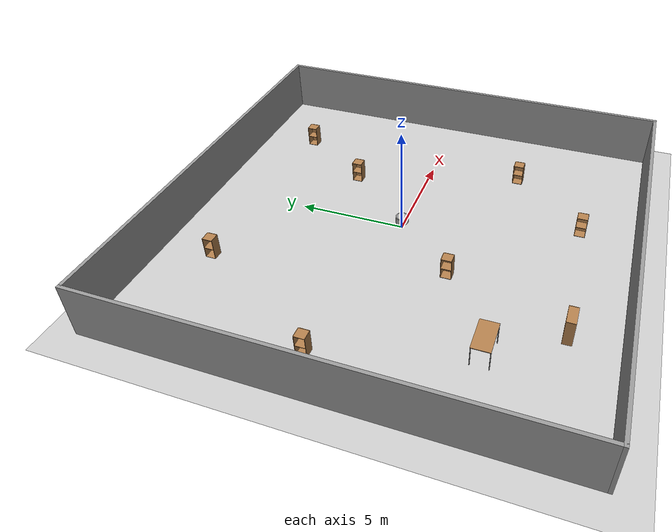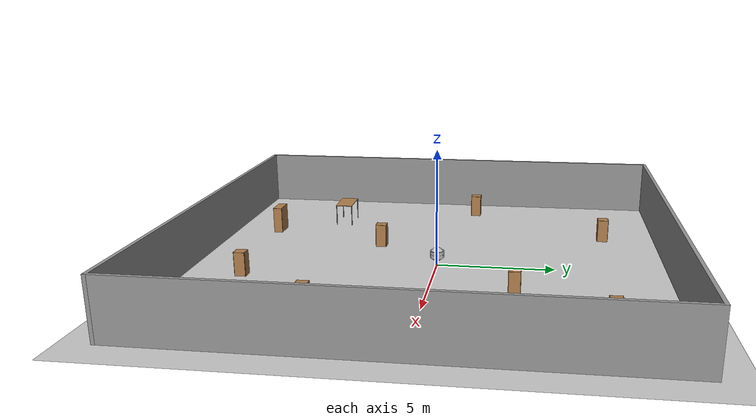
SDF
<sdf version="1.6">
 <world name="default">
  <light name="sun" type="directional">
   <pose>0 0 10 0 -0 0</pose>
   <diffuse>0.8 0.8 0.8 1</diffuse>
   <specular>0.2 0.2 0.2 1</specular>
   <attenuation>
    <range>1000</range>
    <constant>0.9</constant>
    <linear>0.01</linear>
    <quadratic>0.001</quadratic>
   </attenuation>
   <direction>-0.5 0.1 -0.9</direction>
  </light>
  <model name="animated_box">
   <pose>0 0 0.5 0 0 0</pose>
   <link name="link">
    <collision name="animated_box_collision"><geometry><box><size>0.2 0.3 0.3</size></box></geometry></collision>
    <visual name="visual"><geometry><box><size>0.2 0.3 0.3</size></box></geometry></visual>
    <inertial>
     <inertia><ixx>1</ixx><ixy>0</ixy><ixz>0</ixz><iyy>1</iyy><iyz>0</iyz><izz>1</izz></inertia>
     <mass>1</mass>
    </inertial>
    <gravity>0</gravity>
   </link>
   <plugin name="push_animate" filename="libbox_clockwise_movement.so"/>
  </model>
  <model name="animated_ball">
   <pose>0 0 0.5 0 0 0</pose>
   <link name="link">
    <collision name="animated_ball_collision">
     <geometry><sphere><radius>0.3</radius></sphere></geometry>
    </collision>
    <visual name="visual"><geometry><sphere><radius>0.3</radius></sphere></geometry></visual>
    <inertial>
     <inertia><ixx>1</ixx><ixy>0</ixy><ixz>0</ixz><iyy>1</iyy><iyz>0</iyz><izz>1</izz></inertia>
     <mass>1</mass>
    </inertial>
    <gravity>0</gravity>
   </link>
   <plugin name="push_animate2" filename="libbox_clockwise_movement3.so"/>
  </model>
  <model name="animated_cylinder">
   <pose>0 0 0.5 0 0 0</pose>
   <link name="link">
    <collision name="animated_cylinder_collision">
     <geometry><cylinder><radius>0.2</radius><length>0.3</length></cylinder></geometry>
    </collision>
    <visual name="visual">
     <geometry><cylinder><radius>0.2</radius><length>0.3</length></cylinder></geometry>
    </visual>
    <inertial>
     <inertia><ixx>1</ixx><ixy>0</ixy><ixz>0</ixz><iyy>1</iyy><iyz>0</iyz><izz>1</izz></inertia>
     <mass>1</mass>
    </inertial>
    <gravity>0</gravity>
   </link>
   <plugin name="push_animate3" filename="libbox_forward_movement16.so"/>
  </model>
  <model name="animated_cylinder2">
   <pose>0 0 0.5 0 0 0</pose>
   <link name="link">
    <collision name="animated_cylinder2_collision">
     <geometry><cylinder><radius>0.3</radius><length>0.3</length></cylinder></geometry>
    </collision>
    <visual name="visual">
     <geometry><cylinder><radius>0.3</radius><length>0.3</length></cylinder></geometry>
    </visual>
    <inertial>
     <inertia><ixx>1</ixx><ixy>0</ixy><ixz>0</ixz><iyy>1</iyy><iyz>0</iyz><izz>1</izz></inertia>
     <mass>1</mass>
    </inertial>
    <gravity>0</gravity>
   </link>
   <plugin name="push_animate4" filename="libbox_forward_movement7.so"/>
  </model>
  <model name="animated_box2">
   <pose>0 0 0.5 0 0 0</pose>
   <link name="link">
    <collision name="animated_box_collision2"><geometry><box><size>0.2 0.3 0.3</size></box></geometry></collision>
    <visual name="visual"><geometry><box><size>0.2 0.3 0.3</size></box></geometry></visual>
    <inertial>
     <inertia><ixx>1</ixx><ixy>0</ixy><ixz>0</ixz><iyy>1</iyy><iyz>0</iyz><izz>1</izz></inertia>
     <mass>1</mass>
    </inertial>
    <gravity>0</gravity>
   </link>
   <plugin name="push_animate5" filename="libbox_forward_movement13.so"/>
  </model>
  <model name="animated_box3">
   <pose>0 0 0.5 0 0 0</pose>
   <link name="link">
    <collision name="animated_box_collision3"><geometry><box><size>0.2 0.2 0.3</size></box></geometry></collision>
    <visual name="visual"><geometry><box><size>0.2 0.2 0.3</size></box></geometry></visual>
    <inertial>
     <inertia><ixx>1</ixx><ixy>0</ixy><ixz>0</ixz><iyy>1</iyy><iyz>0</iyz><izz>1</izz></inertia>
     <mass>1</mass>
    </inertial>
    <gravity>0</gravity>
   </link>
   <plugin name="push_animate6" filename="libbox_forward_movement18.so"/>
  </model>
  <model name="animated_box4">
   <pose>0 0 0.5 0 0 0</pose>
   <link name="link">
    <collision name="animated_box_collision4"><geometry><box><size>0.4 0.4 0.3</size></box></geometry></collision>
    <visual name="visual"><geometry><box><size>0.4 0.4 0.3</size></box></geometry></visual>
    <inertial>
     <inertia><ixx>1</ixx><ixy>0</ixy><ixz>0</ixz><iyy>1</iyy><iyz>0</iyz><izz>1</izz></inertia>
     <mass>1</mass>
    </inertial>
    <gravity>0</gravity>
   </link>
   <plugin name="push_animate7" filename="libbox_forward_movement10.so"/>
  </model>
  <model name="ground_plane">
   <static>1</static>
   <link name="link">
    <collision name="collision">
     <geometry><plane><normal>0 0 1</normal><size>100 100</size></plane></geometry>
     <surface><friction><ode><mu>100</mu><mu2>50</mu2></ode></friction></surface>
    </collision>
    <visual name="visual">
     <cast_shadows>0</cast_shadows>
     <geometry><plane><normal>0 0 1</normal><size>100 100</size></plane></geometry>
     <material>
      <script><uri>file://media/materials/scripts/gazebo.material</uri><name>Gazebo/Grey</name></script>
     </material>
    </visual>
   </link>
  </model>
  <gravity>0 0 -9.8</gravity>
  <magnetic_field>6e-06 2.3e-05 -4.2e-05</magnetic_field>
  <atmosphere type="adiabatic"/>
  <physics name="default_physics" default="0" type="ode">
   <max_step_size>0.001</max_step_size>
   <real_time_factor>1</real_time_factor>
   <real_time_update_rate>1000</real_time_update_rate>
  </physics>
  <scene><ambient>0.4 0.4 0.4 1</ambient><background>0.7 0.7 0.7 1</background><shadows>1</shadows></scene>
  <audio><device>default</device></audio>
  <spherical_coordinates>
   <surface_model>EARTH_WGS84</surface_model>
   <latitude_deg>0</latitude_deg>
   <longitude_deg>0</longitude_deg>
   <elevation>0</elevation>
   <heading_deg>0</heading_deg>
  </spherical_coordinates>
  <model name="room">
   <pose>-0.399277 -0.326084 0 0 -0 0</pose>
   <link name="Wall_0">
    <collision name="Wall_0_Collision">
     <geometry><box><size>19.75 0.15 2.5</size></box></geometry>
     <pose>0 0 1.25 0 -0 0</pose>
    </collision>
    <visual name="Wall_0_Visual">
     <pose>0 0 1.25 0 -0 0</pose>
     <geometry><box><size>19.75 0.15 2.5</size></box></geometry>
     <material>
      <script><uri>file://media/materials/scripts/gazebo.material</uri><name>Gazebo/Grey</name></script>
      <ambient>1 1 1 1</ambient>
     </material>
     <meta><layer>0</layer></meta>
    </visual>
    <pose>-0 -10.05 0 0 -0 3.14159</pose>
   </link>
   <link name="Wall_2">
    <collision name="Wall_2_Collision">
     <geometry><box><size>20.25 0.15 2.5</size></box></geometry>
     <pose>0 0 1.25 0 -0 0</pose>
    </collision>
    <visual name="Wall_2_Visual">
     <pose>0 0 1.25 0 -0 0</pose>
     <geometry><box><size>20.25 0.15 2.5</size></box></geometry>
     <material>
      <script><uri>file://media/materials/scripts/gazebo.material</uri><name>Gazebo/Grey</name></script>
      <ambient>1 1 1 1</ambient>
     </material>
     <meta><layer>0</layer></meta>
    </visual>
    <pose>-9.8 0 0 0 -0 1.5708</pose>
   </link>
   <link name="Wall_3">
    <collision name="Wall_3_Collision">
     <geometry><box><size>19.75 0.15 2.5</size></box></geometry>
     <pose>0 0 1.25 0 -0 0</pose>
    </collision>
    <visual name="Wall_3_Visual">
     <pose>0 0 1.25 0 -0 0</pose>
     <geometry><box><size>19.75 0.15 2.5</size></box></geometry>
     <material>
      <script><uri>file://media/materials/scripts/gazebo.material</uri><name>Gazebo/Grey</name></script>
      <ambient>1 1 1 1</ambient>
     </material>
     <meta><layer>0</layer></meta>
    </visual>
    <pose>-0 10.05 0 0 -0 0</pose>
   </link>
   <link name="Wall_4">
    <collision name="Wall_4_Collision">
     <geometry><box><size>20.25 0.15 2.5</size></box></geometry>
     <pose>0 0 1.25 0 -0 0</pose>
    </collision>
    <visual name="Wall_4_Visual">
     <pose>0 0 1.25 0 -0 0</pose>
     <geometry><box><size>20.25 0.15 2.5</size></box></geometry>
     <material>
      <script><uri>file://media/materials/scripts/gazebo.material</uri><name>Gazebo/Grey</name></script>
      <ambient>1 1 1 1</ambient>
     </material>
     <meta><layer>0</layer></meta>
    </visual>
    <pose>9.8 0 0 0 -0 -1.5708</pose>
   </link>
   <static>1</static>
  </model>
  <model name="cabinet">
   <static>1</static>
   <link name="cabinet_bottom_plate">
    <inertial>
     <pose>0 0 -1 0 -0 0</pose>
     <inertia><ixx>2.05</ixx><ixy>0</ixy><ixz>0</ixz><iyy>2.05</iyy><iyz>0</iyz><izz>2.05</izz></inertia>
     <mass>25</mass>
    </inertial>
    <collision name="cabinet_bottom_plate_geom">
     <pose>0 0 0.01 0 -0 0</pose>
     <geometry><box><size>0.45 0.45 0.02</size></box></geometry>
    </collision>
    <visual name="cabinet_bottom_plate_geom_visual">
     <pose>0 0 0.01 0 -0 0</pose>
     <geometry><box><size>0.45 0.45 0.02</size></box></geometry>
     <material>
      <script><uri>file://media/materials/scripts/gazebo.material</uri><name>Gazebo/Wood</name></script>
     </material>
    </visual>
    <collision name="cabinet_bottom_plate_geom_cabinet_back_plate">
     <pose>0.235 0 0.51 0 -0 0</pose>
     <geometry><box><size>0.02 0.45 1.02</size></box></geometry>
    </collision>
    <visual name="cabinet_bottom_plate_geom_cabinet_back_plate_visual">
     <pose>0.235 0 0.51 0 -0 0</pose>
     <geometry><box><size>0.02 0.45 1.02</size></box></geometry>
     <material>
      <script><uri>file://media/materials/scripts/gazebo.material</uri><name>Gazebo/Wood</name></script>
     </material>
    </visual>
    <collision name="cabinet_bottom_plate_geom_cabinet_left_plate">
     <pose>0 0.235 0.51 0 -0 0</pose>
     <geometry><box><size>0.45 0.02 1.02</size></box></geometry>
    </collision>
    <visual name="cabinet_bottom_plate_geom_cabinet_left_plate_visual">
     <pose>0 0.235 0.51 0 -0 0</pose>
     <geometry><box><size>0.45 0.02 1.02</size></box></geometry>
     <material>
      <script><uri>file://media/materials/scripts/gazebo.material</uri><name>Gazebo/Wood</name></script>
     </material>
    </visual>
    <collision name="cabinet_bottom_plate_geom_cabinet_middle_plate">
     <pose>0 0 0.51 0 -0 0</pose>
     <geometry><box><size>0.45 0.45 0.02</size></box></geometry>
    </collision>
    <visual name="cabinet_bottom_plate_geom_cabinet_middle_plate_visual">
     <pose>0 0 0.51 0 -0 0</pose>
     <geometry><box><size>0.45 0.45 0.02</size></box></geometry>
     <material>
      <script><uri>file://media/materials/scripts/gazebo.material</uri><name>Gazebo/Wood</name></script>
     </material>
    </visual>
    <collision name="cabinet_bottom_plate_geom_cabinet_right_plate">
     <pose>0 -0.235 0.51 0 -0 0</pose>
     <geometry><box><size>0.45 0.02 1.02</size></box></geometry>
    </collision>
    <visual name="cabinet_bottom_plate_geom_cabinet_right_plate_visual">
     <pose>0 -0.235 0.51 0 -0 0</pose>
     <geometry><box><size>0.45 0.02 1.02</size></box></geometry>
     <material>
      <script><uri>file://media/materials/scripts/gazebo.material</uri><name>Gazebo/Wood</name></script>
     </material>
    </visual>
    <collision name="cabinet_bottom_plate_geom_cabinet_top_plate">
     <pose>0 0 1.01 0 -0 0</pose>
     <geometry><box><size>0.45 0.45 0.02</size></box></geometry>
    </collision>
    <visual name="cabinet_bottom_plate_geom_cabinet_top_plate_visual">
     <pose>0 0 1.01 0 -0 0</pose>
     <geometry><box><size>0.45 0.45 0.02</size></box></geometry>
     <material>
      <script><uri>file://media/materials/scripts/gazebo.material</uri><name>Gazebo/Wood</name></script>
     </material>
    </visual>
   </link>
   <pose>5.50844 7.01111 0 0 -0 0</pose>
  </model>
  <model name="cabinet_0">
   <static>1</static>
   <link name="cabinet_bottom_plate">
    <inertial>
     <pose>0 0 -1 0 -0 0</pose>
     <inertia><ixx>2.05</ixx><ixy>0</ixy><ixz>0</ixz><iyy>2.05</iyy><iyz>0</iyz><izz>2.05</izz></inertia>
     <mass>25</mass>
    </inertial>
    <collision name="cabinet_bottom_plate_geom">
     <pose>0 0 0.01 0 -0 0</pose>
     <geometry><box><size>0.45 0.45 0.02</size></box></geometry>
    </collision>
    <visual name="cabinet_bottom_plate_geom_visual">
     <pose>0 0 0.01 0 -0 0</pose>
     <geometry><box><size>0.45 0.45 0.02</size></box></geometry>
     <material>
      <script><uri>file://media/materials/scripts/gazebo.material</uri><name>Gazebo/Wood</name></script>
     </material>
    </visual>
    <collision name="cabinet_bottom_plate_geom_cabinet_back_plate">
     <pose>0.235 0 0.51 0 -0 0</pose>
     <geometry><box><size>0.02 0.45 1.02</size></box></geometry>
    </collision>
    <visual name="cabinet_bottom_plate_geom_cabinet_back_plate_visual">
     <pose>0.235 0 0.51 0 -0 0</pose>
     <geometry><box><size>0.02 0.45 1.02</size></box></geometry>
     <material>
      <script><uri>file://media/materials/scripts/gazebo.material</uri><name>Gazebo/Wood</name></script>
     </material>
    </visual>
    <collision name="cabinet_bottom_plate_geom_cabinet_left_plate">
     <pose>0 0.235 0.51 0 -0 0</pose>
     <geometry><box><size>0.45 0.02 1.02</size></box></geometry>
    </collision>
    <visual name="cabinet_bottom_plate_geom_cabinet_left_plate_visual">
     <pose>0 0.235 0.51 0 -0 0</pose>
     <geometry><box><size>0.45 0.02 1.02</size></box></geometry>
     <material>
      <script><uri>file://media/materials/scripts/gazebo.material</uri><name>Gazebo/Wood</name></script>
     </material>
    </visual>
    <collision name="cabinet_bottom_plate_geom_cabinet_middle_plate">
     <pose>0 0 0.51 0 -0 0</pose>
     <geometry><box><size>0.45 0.45 0.02</size></box></geometry>
    </collision>
    <visual name="cabinet_bottom_plate_geom_cabinet_middle_plate_visual">
     <pose>0 0 0.51 0 -0 0</pose>
     <geometry><box><size>0.45 0.45 0.02</size></box></geometry>
     <material>
      <script><uri>file://media/materials/scripts/gazebo.material</uri><name>Gazebo/Wood</name></script>
     </material>
    </visual>
    <collision name="cabinet_bottom_plate_geom_cabinet_right_plate">
     <pose>0 -0.235 0.51 0 -0 0</pose>
     <geometry><box><size>0.45 0.02 1.02</size></box></geometry>
    </collision>
    <visual name="cabinet_bottom_plate_geom_cabinet_right_plate_visual">
     <pose>0 -0.235 0.51 0 -0 0</pose>
     <geometry><box><size>0.45 0.02 1.02</size></box></geometry>
     <material>
      <script><uri>file://media/materials/scripts/gazebo.material</uri><name>Gazebo/Wood</name></script>
     </material>
    </visual>
    <collision name="cabinet_bottom_plate_geom_cabinet_top_plate">
     <pose>0 0 1.01 0 -0 0</pose>
     <geometry><box><size>0.45 0.45 0.02</size></box></geometry>
    </collision>
    <visual name="cabinet_bottom_plate_geom_cabinet_top_plate_visual">
     <pose>0 0 1.01 0 -0 0</pose>
     <geometry><box><size>0.45 0.45 0.02</size></box></geometry>
     <material>
      <script><uri>file://media/materials/scripts/gazebo.material</uri><name>Gazebo/Wood</name></script>
     </material>
    </visual>
   </link>
   <pose>3.0718 3.39266 0 0 -0 0</pose>
  </model>
  <model name="cabinet_1">
   <static>1</static>
   <link name="cabinet_bottom_plate">
    <inertial>
     <pose>0 0 -1 0 -0 0</pose>
     <inertia><ixx>2.05</ixx><ixy>0</ixy><ixz>0</ixz><iyy>2.05</iyy><iyz>0</iyz><izz>2.05</izz></inertia>
     <mass>25</mass>
    </inertial>
    <collision name="cabinet_bottom_plate_geom">
     <pose>0 0 0.01 0 -0 0</pose>
     <geometry><box><size>0.45 0.45 0.02</size></box></geometry>
    </collision>
    <visual name="cabinet_bottom_plate_geom_visual">
     <pose>0 0 0.01 0 -0 0</pose>
     <geometry><box><size>0.45 0.45 0.02</size></box></geometry>
     <material>
      <script><uri>file://media/materials/scripts/gazebo.material</uri><name>Gazebo/Wood</name></script>
     </material>
    </visual>
    <collision name="cabinet_bottom_plate_geom_cabinet_back_plate">
     <pose>0.235 0 0.51 0 -0 0</pose>
     <geometry><box><size>0.02 0.45 1.02</size></box></geometry>
    </collision>
    <visual name="cabinet_bottom_plate_geom_cabinet_back_plate_visual">
     <pose>0.235 0 0.51 0 -0 0</pose>
     <geometry><box><size>0.02 0.45 1.02</size></box></geometry>
     <material>
      <script><uri>file://media/materials/scripts/gazebo.material</uri><name>Gazebo/Wood</name></script>
     </material>
    </visual>
    <collision name="cabinet_bottom_plate_geom_cabinet_left_plate">
     <pose>0 0.235 0.51 0 -0 0</pose>
     <geometry><box><size>0.45 0.02 1.02</size></box></geometry>
    </collision>
    <visual name="cabinet_bottom_plate_geom_cabinet_left_plate_visual">
     <pose>0 0.235 0.51 0 -0 0</pose>
     <geometry><box><size>0.45 0.02 1.02</size></box></geometry>
     <material>
      <script><uri>file://media/materials/scripts/gazebo.material</uri><name>Gazebo/Wood</name></script>
     </material>
    </visual>
    <collision name="cabinet_bottom_plate_geom_cabinet_middle_plate">
     <pose>0 0 0.51 0 -0 0</pose>
     <geometry><box><size>0.45 0.45 0.02</size></box></geometry>
    </collision>
    <visual name="cabinet_bottom_plate_geom_cabinet_middle_plate_visual">
     <pose>0 0 0.51 0 -0 0</pose>
     <geometry><box><size>0.45 0.45 0.02</size></box></geometry>
     <material>
      <script><uri>file://media/materials/scripts/gazebo.material</uri><name>Gazebo/Wood</name></script>
     </material>
    </visual>
    <collision name="cabinet_bottom_plate_geom_cabinet_right_plate">
     <pose>0 -0.235 0.51 0 -0 0</pose>
     <geometry><box><size>0.45 0.02 1.02</size></box></geometry>
    </collision>
    <visual name="cabinet_bottom_plate_geom_cabinet_right_plate_visual">
     <pose>0 -0.235 0.51 0 -0 0</pose>
     <geometry><box><size>0.45 0.02 1.02</size></box></geometry>
     <material>
      <script><uri>file://media/materials/scripts/gazebo.material</uri><name>Gazebo/Wood</name></script>
     </material>
    </visual>
    <collision name="cabinet_bottom_plate_geom_cabinet_top_plate">
     <pose>0 0 1.01 0 -0 0</pose>
     <geometry><box><size>0.45 0.45 0.02</size></box></geometry>
    </collision>
    <visual name="cabinet_bottom_plate_geom_cabinet_top_plate_visual">
     <pose>0 0 1.01 0 -0 0</pose>
     <geometry><box><size>0.45 0.45 0.02</size></box></geometry>
     <material>
      <script><uri>file://media/materials/scripts/gazebo.material</uri><name>Gazebo/Wood</name></script>
     </material>
    </visual>
   </link>
   <pose>5.439 -4.35572 0 0 -0 0</pose>
  </model>
  <model name="cabinet_2">
   <static>1</static>
   <link name="cabinet_bottom_plate">
    <inertial>
     <pose>0 0 -1 0 -0 0</pose>
     <inertia><ixx>2.05</ixx><ixy>0</ixy><ixz>0</ixz><iyy>2.05</iyy><iyz>0</iyz><izz>2.05</izz></inertia>
     <mass>25</mass>
    </inertial>
    <collision name="cabinet_bottom_plate_geom">
     <pose>0 0 0.01 0 -0 0</pose>
     <geometry><box><size>0.45 0.45 0.02</size></box></geometry>
    </collision>
    <visual name="cabinet_bottom_plate_geom_visual">
     <pose>0 0 0.01 0 -0 0</pose>
     <geometry><box><size>0.45 0.45 0.02</size></box></geometry>
     <material>
      <script><uri>file://media/materials/scripts/gazebo.material</uri><name>Gazebo/Wood</name></script>
     </material>
    </visual>
    <collision name="cabinet_bottom_plate_geom_cabinet_back_plate">
     <pose>0.235 0 0.51 0 -0 0</pose>
     <geometry><box><size>0.02 0.45 1.02</size></box></geometry>
    </collision>
    <visual name="cabinet_bottom_plate_geom_cabinet_back_plate_visual">
     <pose>0.235 0 0.51 0 -0 0</pose>
     <geometry><box><size>0.02 0.45 1.02</size></box></geometry>
     <material>
      <script><uri>file://media/materials/scripts/gazebo.material</uri><name>Gazebo/Wood</name></script>
     </material>
    </visual>
    <collision name="cabinet_bottom_plate_geom_cabinet_left_plate">
     <pose>0 0.235 0.51 0 -0 0</pose>
     <geometry><box><size>0.45 0.02 1.02</size></box></geometry>
    </collision>
    <visual name="cabinet_bottom_plate_geom_cabinet_left_plate_visual">
     <pose>0 0.235 0.51 0 -0 0</pose>
     <geometry><box><size>0.45 0.02 1.02</size></box></geometry>
     <material>
      <script><uri>file://media/materials/scripts/gazebo.material</uri><name>Gazebo/Wood</name></script>
     </material>
    </visual>
    <collision name="cabinet_bottom_plate_geom_cabinet_middle_plate">
     <pose>0 0 0.51 0 -0 0</pose>
     <geometry><box><size>0.45 0.45 0.02</size></box></geometry>
    </collision>
    <visual name="cabinet_bottom_plate_geom_cabinet_middle_plate_visual">
     <pose>0 0 0.51 0 -0 0</pose>
     <geometry><box><size>0.45 0.45 0.02</size></box></geometry>
     <material>
      <script><uri>file://media/materials/scripts/gazebo.material</uri><name>Gazebo/Wood</name></script>
     </material>
    </visual>
    <collision name="cabinet_bottom_plate_geom_cabinet_right_plate">
     <pose>0 -0.235 0.51 0 -0 0</pose>
     <geometry><box><size>0.45 0.02 1.02</size></box></geometry>
    </collision>
    <visual name="cabinet_bottom_plate_geom_cabinet_right_plate_visual">
     <pose>0 -0.235 0.51 0 -0 0</pose>
     <geometry><box><size>0.45 0.02 1.02</size></box></geometry>
     <material>
      <script><uri>file://media/materials/scripts/gazebo.material</uri><name>Gazebo/Wood</name></script>
     </material>
    </visual>
    <collision name="cabinet_bottom_plate_geom_cabinet_top_plate">
     <pose>0 0 1.01 0 -0 0</pose>
     <geometry><box><size>0.45 0.45 0.02</size></box></geometry>
    </collision>
    <visual name="cabinet_bottom_plate_geom_cabinet_top_plate_visual">
     <pose>0 0 1.01 0 -0 0</pose>
     <geometry><box><size>0.45 0.45 0.02</size></box></geometry>
     <material>
      <script><uri>file://media/materials/scripts/gazebo.material</uri><name>Gazebo/Wood</name></script>
     </material>
    </visual>
   </link>
   <pose>-4.50721 7.26979 0 0 -0 0</pose>
  </model>
  <model name="cabinet_3">
   <static>1</static>
   <link name="cabinet_bottom_plate">
    <inertial>
     <pose>0 0 -1 0 -0 0</pose>
     <inertia><ixx>2.05</ixx><ixy>0</ixy><ixz>0</ixz><iyy>2.05</iyy><iyz>0</iyz><izz>2.05</izz></inertia>
     <mass>25</mass>
    </inertial>
    <collision name="cabinet_bottom_plate_geom">
     <pose>0 0 0.01 0 -0 0</pose>
     <geometry><box><size>0.45 0.45 0.02</size></box></geometry>
    </collision>
    <visual name="cabinet_bottom_plate_geom_visual">
     <pose>0 0 0.01 0 -0 0</pose>
     <geometry><box><size>0.45 0.45 0.02</size></box></geometry>
     <material>
      <script><uri>file://media/materials/scripts/gazebo.material</uri><name>Gazebo/Wood</name></script>
     </material>
    </visual>
    <collision name="cabinet_bottom_plate_geom_cabinet_back_plate">
     <pose>0.235 0 0.51 0 -0 0</pose>
     <geometry><box><size>0.02 0.45 1.02</size></box></geometry>
    </collision>
    <visual name="cabinet_bottom_plate_geom_cabinet_back_plate_visual">
     <pose>0.235 0 0.51 0 -0 0</pose>
     <geometry><box><size>0.02 0.45 1.02</size></box></geometry>
     <material>
      <script><uri>file://media/materials/scripts/gazebo.material</uri><name>Gazebo/Wood</name></script>
     </material>
    </visual>
    <collision name="cabinet_bottom_plate_geom_cabinet_left_plate">
     <pose>0 0.235 0.51 0 -0 0</pose>
     <geometry><box><size>0.45 0.02 1.02</size></box></geometry>
    </collision>
    <visual name="cabinet_bottom_plate_geom_cabinet_left_plate_visual">
     <pose>0 0.235 0.51 0 -0 0</pose>
     <geometry><box><size>0.45 0.02 1.02</size></box></geometry>
     <material>
      <script><uri>file://media/materials/scripts/gazebo.material</uri><name>Gazebo/Wood</name></script>
     </material>
    </visual>
    <collision name="cabinet_bottom_plate_geom_cabinet_middle_plate">
     <pose>0 0 0.51 0 -0 0</pose>
     <geometry><box><size>0.45 0.45 0.02</size></box></geometry>
    </collision>
    <visual name="cabinet_bottom_plate_geom_cabinet_middle_plate_visual">
     <pose>0 0 0.51 0 -0 0</pose>
     <geometry><box><size>0.45 0.45 0.02</size></box></geometry>
     <material>
      <script><uri>file://media/materials/scripts/gazebo.material</uri><name>Gazebo/Wood</name></script>
     </material>
    </visual>
    <collision name="cabinet_bottom_plate_geom_cabinet_right_plate">
     <pose>0 -0.235 0.51 0 -0 0</pose>
     <geometry><box><size>0.45 0.02 1.02</size></box></geometry>
    </collision>
    <visual name="cabinet_bottom_plate_geom_cabinet_right_plate_visual">
     <pose>0 -0.235 0.51 0 -0 0</pose>
     <geometry><box><size>0.45 0.02 1.02</size></box></geometry>
     <material>
      <script><uri>file://media/materials/scripts/gazebo.material</uri><name>Gazebo/Wood</name></script>
     </material>
    </visual>
    <collision name="cabinet_bottom_plate_geom_cabinet_top_plate">
     <pose>0 0 1.01 0 -0 0</pose>
     <geometry><box><size>0.45 0.45 0.02</size></box></geometry>
    </collision>
    <visual name="cabinet_bottom_plate_geom_cabinet_top_plate_visual">
     <pose>0 0 1.01 0 -0 0</pose>
     <geometry><box><size>0.45 0.45 0.02</size></box></geometry>
     <material>
      <script><uri>file://media/materials/scripts/gazebo.material</uri><name>Gazebo/Wood</name></script>
     </material>
    </visual>
   </link>
   <pose>-8.23512 1.05227 0 0 -0 0</pose>
  </model>
  <model name="cabinet_4">
   <static>1</static>
   <link name="cabinet_bottom_plate">
    <inertial>
     <pose>0 0 -1 0 -0 0</pose>
     <inertia><ixx>2.05</ixx><ixy>0</ixy><ixz>0</ixz><iyy>2.05</iyy><iyz>0</iyz><izz>2.05</izz></inertia>
     <mass>25</mass>
    </inertial>
    <collision name="cabinet_bottom_plate_geom">
     <pose>0 0 0.01 0 -0 0</pose>
     <geometry><box><size>0.45 0.45 0.02</size></box></geometry>
    </collision>
    <visual name="cabinet_bottom_plate_geom_visual">
     <pose>0 0 0.01 0 -0 0</pose>
     <geometry><box><size>0.45 0.45 0.02</size></box></geometry>
     <material>
      <script><uri>file://media/materials/scripts/gazebo.material</uri><name>Gazebo/Wood</name></script>
     </material>
    </visual>
    <collision name="cabinet_bottom_plate_geom_cabinet_back_plate">
     <pose>0.235 0 0.51 0 -0 0</pose>
     <geometry><box><size>0.02 0.45 1.02</size></box></geometry>
    </collision>
    <visual name="cabinet_bottom_plate_geom_cabinet_back_plate_visual">
     <pose>0.235 0 0.51 0 -0 0</pose>
     <geometry><box><size>0.02 0.45 1.02</size></box></geometry>
     <material>
      <script><uri>file://media/materials/scripts/gazebo.material</uri><name>Gazebo/Wood</name></script>
     </material>
    </visual>
    <collision name="cabinet_bottom_plate_geom_cabinet_left_plate">
     <pose>0 0.235 0.51 0 -0 0</pose>
     <geometry><box><size>0.45 0.02 1.02</size></box></geometry>
    </collision>
    <visual name="cabinet_bottom_plate_geom_cabinet_left_plate_visual">
     <pose>0 0.235 0.51 0 -0 0</pose>
     <geometry><box><size>0.45 0.02 1.02</size></box></geometry>
     <material>
      <script><uri>file://media/materials/scripts/gazebo.material</uri><name>Gazebo/Wood</name></script>
     </material>
    </visual>
    <collision name="cabinet_bottom_plate_geom_cabinet_middle_plate">
     <pose>0 0 0.51 0 -0 0</pose>
     <geometry><box><size>0.45 0.45 0.02</size></box></geometry>
    </collision>
    <visual name="cabinet_bottom_plate_geom_cabinet_middle_plate_visual">
     <pose>0 0 0.51 0 -0 0</pose>
     <geometry><box><size>0.45 0.45 0.02</size></box></geometry>
     <material>
      <script><uri>file://media/materials/scripts/gazebo.material</uri><name>Gazebo/Wood</name></script>
     </material>
    </visual>
    <collision name="cabinet_bottom_plate_geom_cabinet_right_plate">
     <pose>0 -0.235 0.51 0 -0 0</pose>
     <geometry><box><size>0.45 0.02 1.02</size></box></geometry>
    </collision>
    <visual name="cabinet_bottom_plate_geom_cabinet_right_plate_visual">
     <pose>0 -0.235 0.51 0 -0 0</pose>
     <geometry><box><size>0.45 0.02 1.02</size></box></geometry>
     <material>
      <script><uri>file://media/materials/scripts/gazebo.material</uri><name>Gazebo/Wood</name></script>
     </material>
    </visual>
    <collision name="cabinet_bottom_plate_geom_cabinet_top_plate">
     <pose>0 0 1.01 0 -0 0</pose>
     <geometry><box><size>0.45 0.45 0.02</size></box></geometry>
    </collision>
    <visual name="cabinet_bottom_plate_geom_cabinet_top_plate_visual">
     <pose>0 0 1.01 0 -0 0</pose>
     <geometry><box><size>0.45 0.45 0.02</size></box></geometry>
     <material>
      <script><uri>file://media/materials/scripts/gazebo.material</uri><name>Gazebo/Wood</name></script>
     </material>
    </visual>
   </link>
   <pose>-2.43825 -2.87134 0 0 -0 0</pose>
  </model>
  <model name="cabinet_5">
   <static>1</static>
   <link name="cabinet_bottom_plate">
    <inertial>
     <pose>0 0 -1 0 -0 0</pose>
     <inertia><ixx>2.05</ixx><ixy>0</ixy><ixz>0</ixz><iyy>2.05</iyy><iyz>0</iyz><izz>2.05</izz></inertia>
     <mass>25</mass>
    </inertial>
    <collision name="cabinet_bottom_plate_geom">
     <pose>0 0 0.01 0 -0 0</pose>
     <geometry><box><size>0.45 0.45 0.02</size></box></geometry>
    </collision>
    <visual name="cabinet_bottom_plate_geom_visual">
     <pose>0 0 0.01 0 -0 0</pose>
     <geometry><box><size>0.45 0.45 0.02</size></box></geometry>
     <material>
      <script><uri>file://media/materials/scripts/gazebo.material</uri><name>Gazebo/Wood</name></script>
     </material>
    </visual>
    <collision name="cabinet_bottom_plate_geom_cabinet_back_plate">
     <pose>0.235 0 0.51 0 -0 0</pose>
     <geometry><box><size>0.02 0.45 1.02</size></box></geometry>
    </collision>
    <visual name="cabinet_bottom_plate_geom_cabinet_back_plate_visual">
     <pose>0.235 0 0.51 0 -0 0</pose>
     <geometry><box><size>0.02 0.45 1.02</size></box></geometry>
     <material>
      <script><uri>file://media/materials/scripts/gazebo.material</uri><name>Gazebo/Wood</name></script>
     </material>
    </visual>
    <collision name="cabinet_bottom_plate_geom_cabinet_left_plate">
     <pose>0 0.235 0.51 0 -0 0</pose>
     <geometry><box><size>0.45 0.02 1.02</size></box></geometry>
    </collision>
    <visual name="cabinet_bottom_plate_geom_cabinet_left_plate_visual">
     <pose>0 0.235 0.51 0 -0 0</pose>
     <geometry><box><size>0.45 0.02 1.02</size></box></geometry>
     <material>
      <script><uri>file://media/materials/scripts/gazebo.material</uri><name>Gazebo/Wood</name></script>
     </material>
    </visual>
    <collision name="cabinet_bottom_plate_geom_cabinet_middle_plate">
     <pose>0 0 0.51 0 -0 0</pose>
     <geometry><box><size>0.45 0.45 0.02</size></box></geometry>
    </collision>
    <visual name="cabinet_bottom_plate_geom_cabinet_middle_plate_visual">
     <pose>0 0 0.51 0 -0 0</pose>
     <geometry><box><size>0.45 0.45 0.02</size></box></geometry>
     <material>
      <script><uri>file://media/materials/scripts/gazebo.material</uri><name>Gazebo/Wood</name></script>
     </material>
    </visual>
    <collision name="cabinet_bottom_plate_geom_cabinet_right_plate">
     <pose>0 -0.235 0.51 0 -0 0</pose>
     <geometry><box><size>0.45 0.02 1.02</size></box></geometry>
    </collision>
    <visual name="cabinet_bottom_plate_geom_cabinet_right_plate_visual">
     <pose>0 -0.235 0.51 0 -0 0</pose>
     <geometry><box><size>0.45 0.02 1.02</size></box></geometry>
     <material>
      <script><uri>file://media/materials/scripts/gazebo.material</uri><name>Gazebo/Wood</name></script>
     </material>
    </visual>
    <collision name="cabinet_bottom_plate_geom_cabinet_top_plate">
     <pose>0 0 1.01 0 -0 0</pose>
     <geometry><box><size>0.45 0.45 0.02</size></box></geometry>
    </collision>
    <visual name="cabinet_bottom_plate_geom_cabinet_top_plate_visual">
     <pose>0 0 1.01 0 -0 0</pose>
     <geometry><box><size>0.45 0.45 0.02</size></box></geometry>
     <material>
      <script><uri>file://media/materials/scripts/gazebo.material</uri><name>Gazebo/Wood</name></script>
     </material>
    </visual>
   </link>
   <pose>2.20391 -7.89172 0 0 -0 0</pose>
  </model>
  <model name="table">
   <static>1</static>
   <link name="link">
    <collision name="surface">
     <pose>0 0 1 0 -0 0</pose>
     <geometry><box><size>1.5 0.8 0.03</size></box></geometry>
     <surface><friction><ode><mu>0.6</mu><mu2>0.6</mu2></ode></friction></surface>
    </collision>
    <visual name="visual1">
     <pose>0 0 1 0 -0 0</pose>
     <geometry><box><size>1.5 0.8 0.03</size></box></geometry>
     <material>
      <script><uri>file://media/materials/scripts/gazebo.material</uri><name>Gazebo/Wood</name></script>
     </material>
    </visual>
    <collision name="front_left_leg">
     <pose>0.68 0.38 0.5 0 -0 0</pose>
     <geometry><cylinder><radius>0.02</radius><length>1</length></cylinder></geometry>
    </collision>
    <visual name="front_left_leg">
     <pose>0.68 0.38 0.5 0 -0 0</pose>
     <geometry><cylinder><radius>0.02</radius><length>1</length></cylinder></geometry>
     <material>
      <script><uri>file://media/materials/scripts/gazebo.material</uri><name>Gazebo/Grey</name></script>
     </material>
    </visual>
    <collision name="front_right_leg">
     <pose>0.68 -0.38 0.5 0 -0 0</pose>
     <geometry><cylinder><radius>0.02</radius><length>1</length></cylinder></geometry>
    </collision>
    <visual name="front_right_leg">
     <pose>0.68 -0.38 0.5 0 -0 0</pose>
     <geometry><cylinder><radius>0.02</radius><length>1</length></cylinder></geometry>
     <material>
      <script><uri>file://media/materials/scripts/gazebo.material</uri><name>Gazebo/Grey</name></script>
     </material>
    </visual>
    <collision name="back_right_leg">
     <pose>-0.68 -0.38 0.5 0 -0 0</pose>
     <geometry><cylinder><radius>0.02</radius><length>1</length></cylinder></geometry>
    </collision>
    <visual name="back_right_leg">
     <pose>-0.68 -0.38 0.5 0 -0 0</pose>
     <geometry><cylinder><radius>0.02</radius><length>1</length></cylinder></geometry>
     <material>
      <script><uri>file://media/materials/scripts/gazebo.material</uri><name>Gazebo/Grey</name></script>
     </material>
    </visual>
    <collision name="back_left_leg">
     <pose>-0.68 0.38 0.5 0 -0 0</pose>
     <geometry><cylinder><radius>0.02</radius><length>1</length></cylinder></geometry>
    </collision>
    <visual name="back_left_leg">
     <pose>-0.68 0.38 0.5 0 -0 0</pose>
     <geometry><cylinder><radius>0.02</radius><length>1</length></cylinder></geometry>
     <material>
      <script><uri>file://media/materials/scripts/gazebo.material</uri><name>Gazebo/Grey</name></script>
     </material>
    </visual>
   </link>
   <pose>-6.12638 -5.36102 0 0 -0 0</pose>
  </model>
  <model name="bookshelf">
   <static>1</static>
   <link name="link">
    <inertial><mass>1</mass></inertial>
    <collision name="back">
     <pose>0 0.005 0.6 0 -0 0</pose>
     <geometry><box><size>0.9 0.01 1.2</size></box></geometry>
    </collision>
    <visual name="visual1">
     <pose>0 0.005 0.6 0 -0 0</pose>
     <geometry><box><size>0.9 0.01 1.2</size></box></geometry>
     <material>
      <script><uri>file://media/materials/scripts/gazebo.material</uri><name>Gazebo/Wood</name></script>
     </material>
    </visual>
    <collision name="left_side">
     <pose>0.45 -0.195 0.6 0 -0 0</pose>
     <geometry><box><size>0.02 0.4 1.2</size></box></geometry>
    </collision>
    <visual name="visual2">
     <pose>0.45 -0.195 0.6 0 -0 0</pose>
     <geometry><box><size>0.02 0.4 1.2</size></box></geometry>
     <material>
      <script><uri>file://media/materials/scripts/gazebo.material</uri><name>Gazebo/Wood</name></script>
     </material>
    </visual>
    <collision name="right_side">
     <pose>-0.45 -0.195 0.6 0 -0 0</pose>
     <geometry><box><size>0.02 0.4 1.2</size></box></geometry>
    </collision>
    <visual name="visual3">
     <pose>-0.45 -0.195 0.6 0 -0 0</pose>
     <geometry><box><size>0.02 0.4 1.2</size></box></geometry>
     <material>
      <script><uri>file://media/materials/scripts/gazebo.material</uri><name>Gazebo/Wood</name></script>
     </material>
    </visual>
    <collision name="bottom">
     <pose>0 -0.195 0.03 0 -0 0</pose>
     <geometry><box><size>0.88 0.4 0.06</size></box></geometry>
    </collision>
    <visual name="visual4">
     <pose>0 -0.195 0.03 0 -0 0</pose>
     <geometry><box><size>0.88 0.4 0.06</size></box></geometry>
     <material>
      <script><uri>file://media/materials/scripts/gazebo.material</uri><name>Gazebo/Wood</name></script>
     </material>
    </visual>
    <collision name="top">
     <pose>0 -0.195 1.19 0 -0 0</pose>
     <geometry><box><size>0.88 0.4 0.02</size></box></geometry>
    </collision>
    <visual name="visual5">
     <pose>0 -0.195 1.19 0 -0 0</pose>
     <geometry><box><size>0.88 0.4 0.02</size></box></geometry>
     <material>
      <script><uri>file://media/materials/scripts/gazebo.material</uri><name>Gazebo/Wood</name></script>
     </material>
    </visual>
    <collision name="low_shelf">
     <pose>0 -0.195 0.43 0 -0 0</pose>
     <geometry><box><size>0.88 0.4 0.02</size></box></geometry>
    </collision>
    <visual name="visual6">
     <pose>0 -0.195 0.43 0 -0 0</pose>
     <geometry><box><size>0.88 0.4 0.02</size></box></geometry>
     <material>
      <script><uri>file://media/materials/scripts/gazebo.material</uri><name>Gazebo/Wood</name></script>
     </material>
    </visual>
    <collision name="high_shelf">
     <pose>0 -0.195 0.8 0 -0 0</pose>
     <geometry><box><size>0.88 0.4 0.02</size></box></geometry>
    </collision>
    <visual name="visual7">
     <pose>0 -0.195 0.8 0 -0 0</pose>
     <geometry><box><size>0.88 0.4 0.02</size></box></geometry>
     <material>
      <script><uri>file://media/materials/scripts/gazebo.material</uri><name>Gazebo/Wood</name></script>
     </material>
    </visual>
   </link>
   <pose>-4.23504 -8.06584 0 0 -0 0</pose>
  </model>
 </world>
</sdf>
